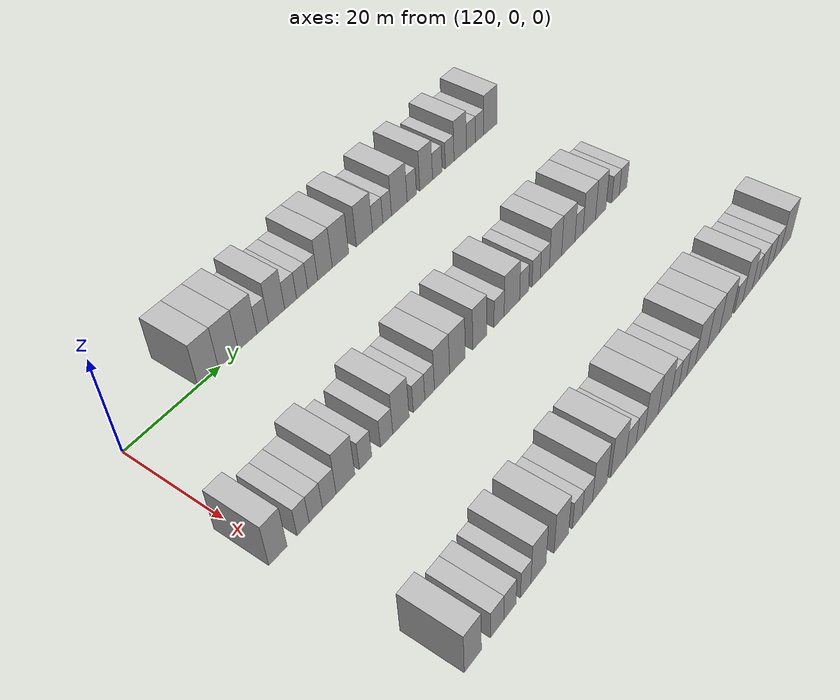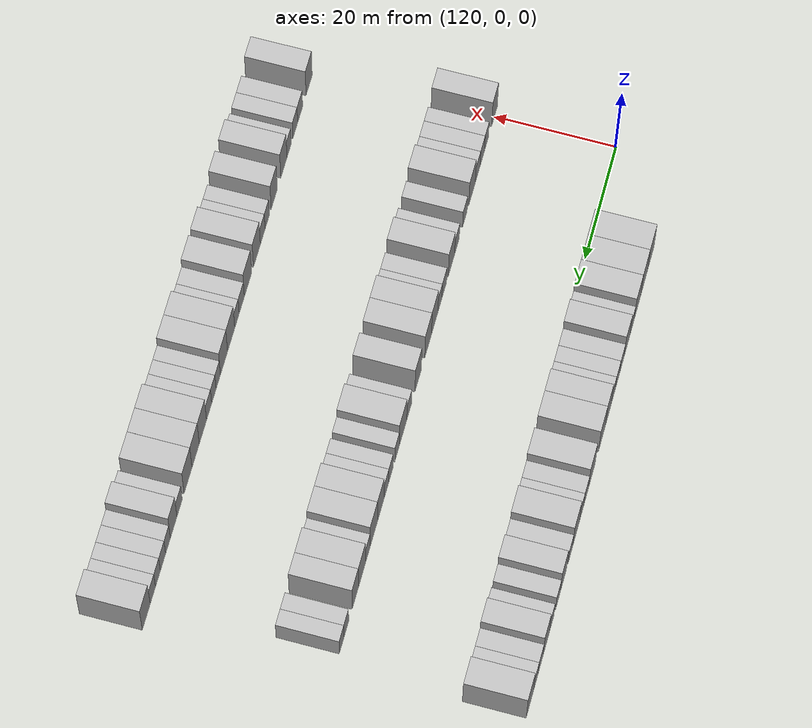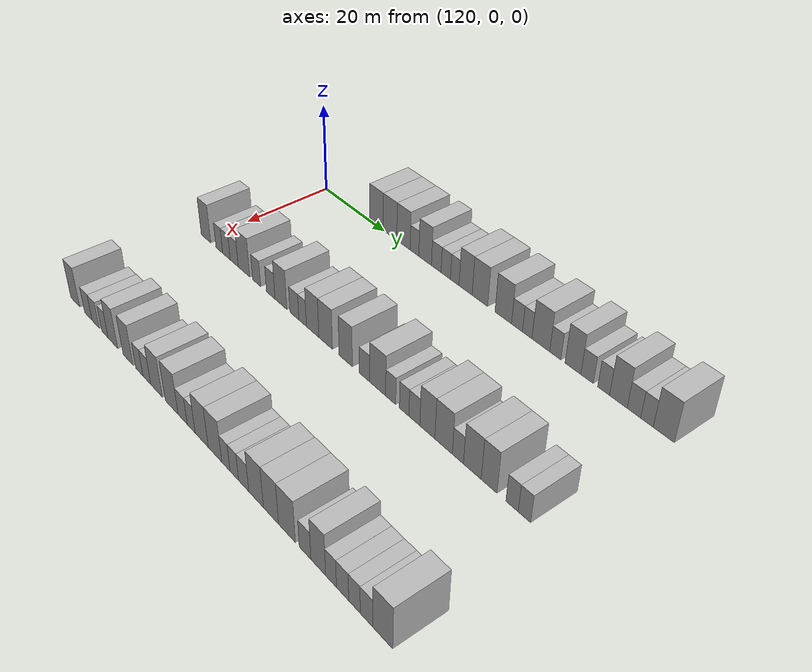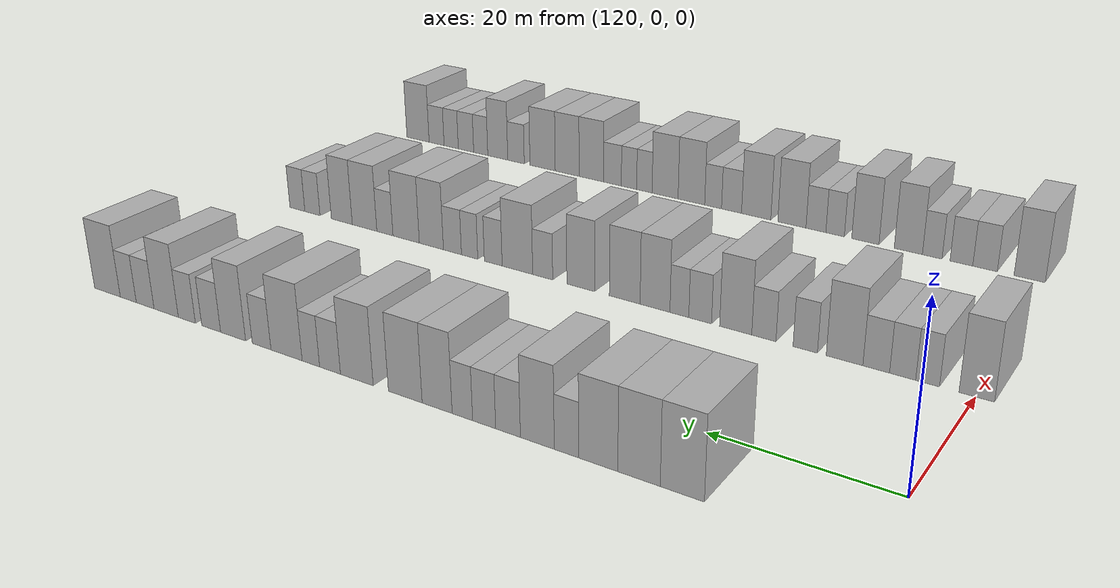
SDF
<sdf version="1.6">
 <world name="default">
  <model name="building_787">
   <static>1</static>
   <pose>115.0000 17.3237 0 0.000000 0.000000 0.000000</pose>
   <link name="link">
    <pose>0 0 4.50 0 0 0</pose>
    <collision name="collision"><geometry><box><size>10.0000 4.4347 9.0000</size></box></geometry></collision>
    <visual name="visual">
     <cast_shadows>0</cast_shadows>
     <geometry><box><size>10.0000 4.4347 9.0000</size></box></geometry>
     <material>
      <script>
       <uri>model://HANNAS_wall/materials/scripts</uri>
       <uri>model://HANNAS_wall/materials/textures</uri>
       <name>vrc/HANNAS_wall</name>
      </script>
     </material>
    </visual>
   </link>
  </model>
  <model name="building_788">
   <static>1</static>
   <pose>115.0000 21.7464 0 0.000000 0.000000 0.000000</pose>
   <link name="link">
    <pose>0 0 4.50 0 0 0</pose>
    <collision name="collision"><geometry><box><size>10.0000 4.4107 9.0000</size></box></geometry></collision>
    <visual name="visual">
     <cast_shadows>0</cast_shadows>
     <geometry><box><size>10.0000 4.4107 9.0000</size></box></geometry>
     <material>
      <script>
       <uri>model://HANNAS_wall/materials/scripts</uri>
       <uri>model://HANNAS_wall/materials/textures</uri>
       <name>vrc/HANNAS_wall</name>
      </script>
     </material>
    </visual>
   </link>
  </model>
  <model name="building_789">
   <static>1</static>
   <pose>115.0000 26.0598 0 0.000000 0.000000 0.000000</pose>
   <link name="link">
    <pose>0 0 4.50 0 0 0</pose>
    <collision name="collision"><geometry><box><size>10.0000 4.2161 9.0000</size></box></geometry></collision>
    <visual name="visual">
     <cast_shadows>0</cast_shadows>
     <geometry><box><size>10.0000 4.2161 9.0000</size></box></geometry>
     <material>
      <script>
       <uri>model://HANNAS_wall/materials/scripts</uri>
       <uri>model://HANNAS_wall/materials/textures</uri>
       <name>vrc/HANNAS_wall</name>
      </script>
     </material>
    </visual>
   </link>
  </model>
  <model name="building_790">
   <static>1</static>
   <pose>115.0000 29.5167 0 0.000000 0.000000 0.000000</pose>
   <link name="link">
    <pose>0 0 3.00 0 0 0</pose>
    <collision name="collision"><geometry><box><size>10.0000 2.6978 6.0000</size></box></geometry></collision>
    <visual name="visual">
     <cast_shadows>0</cast_shadows>
     <geometry><box><size>10.0000 2.6978 6.0000</size></box></geometry>
     <material>
      <script>
       <uri>model://HANNAS_wall/materials/scripts</uri>
       <uri>model://HANNAS_wall/materials/textures</uri>
       <name>vrc/HANNAS_wall</name>
      </script>
     </material>
    </visual>
   </link>
  </model>
  <model name="building_791">
   <static>1</static>
   <pose>115.0000 32.7900 0 0.000000 0.000000 0.000000</pose>
   <link name="link">
    <pose>0 0 4.50 0 0 0</pose>
    <collision name="collision"><geometry><box><size>10.0000 3.8489 9.0000</size></box></geometry></collision>
    <visual name="visual">
     <cast_shadows>0</cast_shadows>
     <geometry><box><size>10.0000 3.8489 9.0000</size></box></geometry>
     <material>
      <script>
       <uri>model://HANNAS_wall/materials/scripts</uri>
       <uri>model://HANNAS_wall/materials/textures</uri>
       <name>vrc/HANNAS_wall</name>
      </script>
     </material>
    </visual>
   </link>
  </model>
  <model name="building_792">
   <static>1</static>
   <pose>115.0000 36.1568 0 0.000000 0.000000 0.000000</pose>
   <link name="link">
    <pose>0 0 3.00 0 0 0</pose>
    <collision name="collision"><geometry><box><size>10.0000 2.8846 6.0000</size></box></geometry></collision>
    <visual name="visual">
     <cast_shadows>0</cast_shadows>
     <geometry><box><size>10.0000 2.8846 6.0000</size></box></geometry>
     <material>
      <script>
       <uri>model://HANNAS_wall/materials/scripts</uri>
       <uri>model://HANNAS_wall/materials/textures</uri>
       <name>vrc/HANNAS_wall</name>
      </script>
     </material>
    </visual>
   </link>
  </model>
  <model name="building_793">
   <static>1</static>
   <pose>115.0000 38.9729 0 0.000000 0.000000 0.000000</pose>
   <link name="link">
    <pose>0 0 3.00 0 0 0</pose>
    <collision name="collision"><geometry><box><size>10.0000 2.7478 6.0000</size></box></geometry></collision>
    <visual name="visual">
     <cast_shadows>0</cast_shadows>
     <geometry><box><size>10.0000 2.7478 6.0000</size></box></geometry>
     <material>
      <script>
       <uri>model://HANNAS_wall/materials/scripts</uri>
       <uri>model://HANNAS_wall/materials/textures</uri>
       <name>vrc/HANNAS_wall</name>
      </script>
     </material>
    </visual>
   </link>
  </model>
  <model name="building_794">
   <static>1</static>
   <pose>115.0000 41.5911 0 0.000000 0.000000 0.000000</pose>
   <link name="link">
    <pose>0 0 3.00 0 0 0</pose>
    <collision name="collision"><geometry><box><size>10.0000 2.4885 6.0000</size></box></geometry></collision>
    <visual name="visual">
     <cast_shadows>0</cast_shadows>
     <geometry><box><size>10.0000 2.4885 6.0000</size></box></geometry>
     <material>
      <script>
       <uri>model://HANNAS_wall/materials/scripts</uri>
       <uri>model://HANNAS_wall/materials/textures</uri>
       <name>vrc/HANNAS_wall</name>
      </script>
     </material>
    </visual>
   </link>
  </model>
  <model name="building_795">
   <static>1</static>
   <pose>115.0000 44.7033 0 0.000000 0.000000 0.000000</pose>
   <link name="link">
    <pose>0 0 4.50 0 0 0</pose>
    <collision name="collision"><geometry><box><size>10.0000 3.7360 9.0000</size></box></geometry></collision>
    <visual name="visual">
     <cast_shadows>0</cast_shadows>
     <geometry><box><size>10.0000 3.7360 9.0000</size></box></geometry>
     <material>
      <script>
       <uri>model://HANNAS_wall/materials/scripts</uri>
       <uri>model://HANNAS_wall/materials/textures</uri>
       <name>vrc/HANNAS_wall</name>
      </script>
     </material>
    </visual>
   </link>
  </model>
  <model name="building_796">
   <static>1</static>
   <pose>115.0000 48.7339 0 0.000000 0.000000 0.000000</pose>
   <link name="link">
    <pose>0 0 4.50 0 0 0</pose>
    <collision name="collision"><geometry><box><size>10.0000 4.3251 9.0000</size></box></geometry></collision>
    <visual name="visual">
     <cast_shadows>0</cast_shadows>
     <geometry><box><size>10.0000 4.3251 9.0000</size></box></geometry>
     <material>
      <script>
       <uri>model://HANNAS_wall/materials/scripts</uri>
       <uri>model://HANNAS_wall/materials/textures</uri>
       <name>vrc/HANNAS_wall</name>
      </script>
     </material>
    </visual>
   </link>
  </model>
  <model name="building_797">
   <static>1</static>
   <pose>115.0000 55.0959 0 0.000000 0.000000 0.000000</pose>
   <link name="link">
    <pose>0 0 4.50 0 0 0</pose>
    <collision name="collision"><geometry><box><size>10.0000 4.3990 9.0000</size></box></geometry></collision>
    <visual name="visual">
     <cast_shadows>0</cast_shadows>
     <geometry><box><size>10.0000 4.3990 9.0000</size></box></geometry>
     <material>
      <script>
       <uri>model://HANNAS_wall/materials/scripts</uri>
       <uri>model://HANNAS_wall/materials/textures</uri>
       <name>vrc/HANNAS_wall</name>
      </script>
     </material>
    </visual>
   </link>
  </model>
  <model name="building_798">
   <static>1</static>
   <pose>115.0000 58.7341 0 0.000000 0.000000 0.000000</pose>
   <link name="link">
    <pose>0 0 3.00 0 0 0</pose>
    <collision name="collision"><geometry><box><size>10.0000 2.8775 6.0000</size></box></geometry></collision>
    <visual name="visual">
     <cast_shadows>0</cast_shadows>
     <geometry><box><size>10.0000 2.8775 6.0000</size></box></geometry>
     <material>
      <script>
       <uri>model://HANNAS_wall/materials/scripts</uri>
       <uri>model://HANNAS_wall/materials/textures</uri>
       <name>vrc/HANNAS_wall</name>
      </script>
     </material>
    </visual>
   </link>
  </model>
  <model name="building_799">
   <static>1</static>
   <pose>115.0000 61.3990 0 0.000000 0.000000 0.000000</pose>
   <link name="link">
    <pose>0 0 3.00 0 0 0</pose>
    <collision name="collision"><geometry><box><size>10.0000 2.4522 6.0000</size></box></geometry></collision>
    <visual name="visual">
     <cast_shadows>0</cast_shadows>
     <geometry><box><size>10.0000 2.4522 6.0000</size></box></geometry>
     <material>
      <script>
       <uri>model://HANNAS_wall/materials/scripts</uri>
       <uri>model://HANNAS_wall/materials/textures</uri>
       <name>vrc/HANNAS_wall</name>
      </script>
     </material>
    </visual>
   </link>
  </model>
  <model name="building_800">
   <static>1</static>
   <pose>115.0000 64.8668 0 0.000000 0.000000 0.000000</pose>
   <link name="link">
    <pose>0 0 4.50 0 0 0</pose>
    <collision name="collision"><geometry><box><size>10.0000 4.4833 9.0000</size></box></geometry></collision>
    <visual name="visual">
     <cast_shadows>0</cast_shadows>
     <geometry><box><size>10.0000 4.4833 9.0000</size></box></geometry>
     <material>
      <script>
       <uri>model://HANNAS_wall/materials/scripts</uri>
       <uri>model://HANNAS_wall/materials/textures</uri>
       <name>vrc/HANNAS_wall</name>
      </script>
     </material>
    </visual>
   </link>
  </model>
  <model name="building_801">
   <static>1</static>
   <pose>115.0000 68.4862 0 0.000000 0.000000 0.000000</pose>
   <link name="link">
    <pose>0 0 3.00 0 0 0</pose>
    <collision name="collision"><geometry><box><size>10.0000 2.7556 6.0000</size></box></geometry></collision>
    <visual name="visual">
     <cast_shadows>0</cast_shadows>
     <geometry><box><size>10.0000 2.7556 6.0000</size></box></geometry>
     <material>
      <script>
       <uri>model://HANNAS_wall/materials/scripts</uri>
       <uri>model://HANNAS_wall/materials/textures</uri>
       <name>vrc/HANNAS_wall</name>
      </script>
     </material>
    </visual>
   </link>
  </model>
  <model name="building_802">
   <static>1</static>
   <pose>115.0000 72.7649 0 0.000000 0.000000 0.000000</pose>
   <link name="link">
    <pose>0 0 4.50 0 0 0</pose>
    <collision name="collision"><geometry><box><size>10.0000 3.8017 9.0000</size></box></geometry></collision>
    <visual name="visual">
     <cast_shadows>0</cast_shadows>
     <geometry><box><size>10.0000 3.8017 9.0000</size></box></geometry>
     <material>
      <script>
       <uri>model://HANNAS_wall/materials/scripts</uri>
       <uri>model://HANNAS_wall/materials/textures</uri>
       <name>vrc/HANNAS_wall</name>
      </script>
     </material>
    </visual>
   </link>
  </model>
  <model name="building_803">
   <static>1</static>
   <pose>115.0000 76.1323 0 0.000000 0.000000 0.000000</pose>
   <link name="link">
    <pose>0 0 3.00 0 0 0</pose>
    <collision name="collision"><geometry><box><size>10.0000 2.9332 6.0000</size></box></geometry></collision>
    <visual name="visual">
     <cast_shadows>0</cast_shadows>
     <geometry><box><size>10.0000 2.9332 6.0000</size></box></geometry>
     <material>
      <script>
       <uri>model://HANNAS_wall/materials/scripts</uri>
       <uri>model://HANNAS_wall/materials/textures</uri>
       <name>vrc/HANNAS_wall</name>
      </script>
     </material>
    </visual>
   </link>
  </model>
  <model name="building_804">
   <static>1</static>
   <pose>115.0000 79.9603 0 0.000000 0.000000 0.000000</pose>
   <link name="link">
    <pose>0 0 3.00 0 0 0</pose>
    <collision name="collision"><geometry><box><size>10.0000 2.7228 6.0000</size></box></geometry></collision>
    <visual name="visual">
     <cast_shadows>0</cast_shadows>
     <geometry><box><size>10.0000 2.7228 6.0000</size></box></geometry>
     <material>
      <script>
       <uri>model://HANNAS_wall/materials/scripts</uri>
       <uri>model://HANNAS_wall/materials/textures</uri>
       <name>vrc/HANNAS_wall</name>
      </script>
     </material>
    </visual>
   </link>
  </model>
  <model name="building_805">
   <static>1</static>
   <pose>115.0000 83.2973 0 0.000000 0.000000 0.000000</pose>
   <link name="link">
    <pose>0 0 4.50 0 0 0</pose>
    <collision name="collision"><geometry><box><size>10.0000 3.9514 9.0000</size></box></geometry></collision>
    <visual name="visual">
     <cast_shadows>0</cast_shadows>
     <geometry><box><size>10.0000 3.9514 9.0000</size></box></geometry>
     <material>
      <script>
       <uri>model://HANNAS_wall/materials/scripts</uri>
       <uri>model://HANNAS_wall/materials/textures</uri>
       <name>vrc/HANNAS_wall</name>
      </script>
     </material>
    </visual>
   </link>
  </model>
  <model name="building_806">
   <static>1</static>
   <pose>115.0000 86.7547 0 0.000000 0.000000 0.000000</pose>
   <link name="link">
    <pose>0 0 3.00 0 0 0</pose>
    <collision name="collision"><geometry><box><size>10.0000 2.9634 6.0000</size></box></geometry></collision>
    <visual name="visual">
     <cast_shadows>0</cast_shadows>
     <geometry><box><size>10.0000 2.9634 6.0000</size></box></geometry>
     <material>
      <script>
       <uri>model://HANNAS_wall/materials/scripts</uri>
       <uri>model://HANNAS_wall/materials/textures</uri>
       <name>vrc/HANNAS_wall</name>
      </script>
     </material>
    </visual>
   </link>
  </model>
  <model name="building_807">
   <static>1</static>
   <pose>115.0000 89.5929 0 0.000000 0.000000 0.000000</pose>
   <link name="link">
    <pose>0 0 3.00 0 0 0</pose>
    <collision name="collision"><geometry><box><size>10.0000 2.7131 6.0000</size></box></geometry></collision>
    <visual name="visual">
     <cast_shadows>0</cast_shadows>
     <geometry><box><size>10.0000 2.7131 6.0000</size></box></geometry>
     <material>
      <script>
       <uri>model://HANNAS_wall/materials/scripts</uri>
       <uri>model://HANNAS_wall/materials/textures</uri>
       <name>vrc/HANNAS_wall</name>
      </script>
     </material>
    </visual>
   </link>
  </model>
  <model name="building_808">
   <static>1</static>
   <pose>115.0000 93.1751 0 0.000000 0.000000 0.000000</pose>
   <link name="link">
    <pose>0 0 4.50 0 0 0</pose>
    <collision name="collision"><geometry><box><size>10.0000 4.4512 9.0000</size></box></geometry></collision>
    <visual name="visual">
     <cast_shadows>0</cast_shadows>
     <geometry><box><size>10.0000 4.4512 9.0000</size></box></geometry>
     <material>
      <script>
       <uri>model://HANNAS_wall/materials/scripts</uri>
       <uri>model://HANNAS_wall/materials/textures</uri>
       <name>vrc/HANNAS_wall</name>
      </script>
     </material>
    </visual>
   </link>
  </model>
  <model name="building_1011">
   <static>1</static>
   <pose>145.0000 -0.0899 0 0.000000 0.000000 0.000000</pose>
   <link name="link">
    <pose>0 0 4.50 0 0 0</pose>
    <collision name="collision"><geometry><box><size>10.0000 3.6062 9.0000</size></box></geometry></collision>
    <visual name="visual">
     <cast_shadows>0</cast_shadows>
     <geometry><box><size>10.0000 3.6062 9.0000</size></box></geometry>
     <material>
      <script>
       <uri>model://HANNAS_wall/materials/scripts</uri>
       <uri>model://HANNAS_wall/materials/textures</uri>
       <name>vrc/HANNAS_wall</name>
      </script>
     </material>
    </visual>
   </link>
  </model>
  <model name="building_1012">
   <static>1</static>
   <pose>145.0000 4.9641 0 0.000000 0.000000 0.000000</pose>
   <link name="link">
    <pose>0 0 3.00 0 0 0</pose>
    <collision name="collision"><geometry><box><size>10.0000 2.5018 6.0000</size></box></geometry></collision>
    <visual name="visual">
     <cast_shadows>0</cast_shadows>
     <geometry><box><size>10.0000 2.5018 6.0000</size></box></geometry>
     <material>
      <script>
       <uri>model://HANNAS_wall/materials/scripts</uri>
       <uri>model://HANNAS_wall/materials/textures</uri>
       <name>vrc/HANNAS_wall</name>
      </script>
     </material>
    </visual>
   </link>
  </model>
  <model name="building_1013">
   <static>1</static>
   <pose>145.0000 7.6079 0 0.000000 0.000000 0.000000</pose>
   <link name="link">
    <pose>0 0 3.00 0 0 0</pose>
    <collision name="collision"><geometry><box><size>10.0000 2.7857 6.0000</size></box></geometry></collision>
    <visual name="visual">
     <cast_shadows>0</cast_shadows>
     <geometry><box><size>10.0000 2.7857 6.0000</size></box></geometry>
     <material>
      <script>
       <uri>model://HANNAS_wall/materials/scripts</uri>
       <uri>model://HANNAS_wall/materials/textures</uri>
       <name>vrc/HANNAS_wall</name>
      </script>
     </material>
    </visual>
   </link>
  </model>
  <model name="building_1014">
   <static>1</static>
   <pose>145.0000 10.4565 0 0.000000 0.000000 0.000000</pose>
   <link name="link">
    <pose>0 0 3.00 0 0 0</pose>
    <collision name="collision"><geometry><box><size>10.0000 2.9116 6.0000</size></box></geometry></collision>
    <visual name="visual">
     <cast_shadows>0</cast_shadows>
     <geometry><box><size>10.0000 2.9116 6.0000</size></box></geometry>
     <material>
      <script>
       <uri>model://HANNAS_wall/materials/scripts</uri>
       <uri>model://HANNAS_wall/materials/textures</uri>
       <name>vrc/HANNAS_wall</name>
      </script>
     </material>
    </visual>
   </link>
  </model>
  <model name="building_1015">
   <static>1</static>
   <pose>145.0000 13.9588 0 0.000000 0.000000 0.000000</pose>
   <link name="link">
    <pose>0 0 4.50 0 0 0</pose>
    <collision name="collision"><geometry><box><size>10.0000 4.0930 9.0000</size></box></geometry></collision>
    <visual name="visual">
     <cast_shadows>0</cast_shadows>
     <geometry><box><size>10.0000 4.0930 9.0000</size></box></geometry>
     <material>
      <script>
       <uri>model://HANNAS_wall/materials/scripts</uri>
       <uri>model://HANNAS_wall/materials/textures</uri>
       <name>vrc/HANNAS_wall</name>
      </script>
     </material>
    </visual>
   </link>
  </model>
  <model name="building_1016">
   <static>1</static>
   <pose>145.0000 18.4103 0 0.000000 0.000000 0.000000</pose>
   <link name="link">
    <pose>0 0 3.00 0 0 0</pose>
    <collision name="collision"><geometry><box><size>10.0000 2.8099 6.0000</size></box></geometry></collision>
    <visual name="visual">
     <cast_shadows>0</cast_shadows>
     <geometry><box><size>10.0000 2.8099 6.0000</size></box></geometry>
     <material>
      <script>
       <uri>model://HANNAS_wall/materials/scripts</uri>
       <uri>model://HANNAS_wall/materials/textures</uri>
       <name>vrc/HANNAS_wall</name>
      </script>
     </material>
    </visual>
   </link>
  </model>
  <model name="building_1017">
   <static>1</static>
   <pose>145.0000 23.2576 0 0.000000 0.000000 0.000000</pose>
   <link name="link">
    <pose>0 0 3.00 0 0 0</pose>
    <collision name="collision"><geometry><box><size>10.0000 2.8848 6.0000</size></box></geometry></collision>
    <visual name="visual">
     <cast_shadows>0</cast_shadows>
     <geometry><box><size>10.0000 2.8848 6.0000</size></box></geometry>
     <material>
      <script>
       <uri>model://HANNAS_wall/materials/scripts</uri>
       <uri>model://HANNAS_wall/materials/textures</uri>
       <name>vrc/HANNAS_wall</name>
      </script>
     </material>
    </visual>
   </link>
  </model>
  <model name="building_1018">
   <static>1</static>
   <pose>145.0000 26.6573 0 0.000000 0.000000 0.000000</pose>
   <link name="link">
    <pose>0 0 4.50 0 0 0</pose>
    <collision name="collision"><geometry><box><size>10.0000 3.9147 9.0000</size></box></geometry></collision>
    <visual name="visual">
     <cast_shadows>0</cast_shadows>
     <geometry><box><size>10.0000 3.9147 9.0000</size></box></geometry>
     <material>
      <script>
       <uri>model://HANNAS_wall/materials/scripts</uri>
       <uri>model://HANNAS_wall/materials/textures</uri>
       <name>vrc/HANNAS_wall</name>
      </script>
     </material>
    </visual>
   </link>
  </model>
  <model name="building_1019">
   <static>1</static>
   <pose>145.0000 31.0415 0 0.000000 0.000000 0.000000</pose>
   <link name="link">
    <pose>0 0 3.00 0 0 0</pose>
    <collision name="collision"><geometry><box><size>10.0000 2.8536 6.0000</size></box></geometry></collision>
    <visual name="visual">
     <cast_shadows>0</cast_shadows>
     <geometry><box><size>10.0000 2.8536 6.0000</size></box></geometry>
     <material>
      <script>
       <uri>model://HANNAS_wall/materials/scripts</uri>
       <uri>model://HANNAS_wall/materials/textures</uri>
       <name>vrc/HANNAS_wall</name>
      </script>
     </material>
    </visual>
   </link>
  </model>
  <model name="building_1020">
   <static>1</static>
   <pose>145.0000 33.6708 0 0.000000 0.000000 0.000000</pose>
   <link name="link">
    <pose>0 0 3.00 0 0 0</pose>
    <collision name="collision"><geometry><box><size>10.0000 2.4051 6.0000</size></box></geometry></collision>
    <visual name="visual">
     <cast_shadows>0</cast_shadows>
     <geometry><box><size>10.0000 2.4051 6.0000</size></box></geometry>
     <material>
      <script>
       <uri>model://HANNAS_wall/materials/scripts</uri>
       <uri>model://HANNAS_wall/materials/textures</uri>
       <name>vrc/HANNAS_wall</name>
      </script>
     </material>
    </visual>
   </link>
  </model>
  <model name="building_1021">
   <static>1</static>
   <pose>145.0000 36.8156 0 0.000000 0.000000 0.000000</pose>
   <link name="link">
    <pose>0 0 4.50 0 0 0</pose>
    <collision name="collision"><geometry><box><size>10.0000 3.8844 9.0000</size></box></geometry></collision>
    <visual name="visual">
     <cast_shadows>0</cast_shadows>
     <geometry><box><size>10.0000 3.8844 9.0000</size></box></geometry>
     <material>
      <script>
       <uri>model://HANNAS_wall/materials/scripts</uri>
       <uri>model://HANNAS_wall/materials/textures</uri>
       <name>vrc/HANNAS_wall</name>
      </script>
     </material>
    </visual>
   </link>
  </model>
  <model name="building_1022">
   <static>1</static>
   <pose>145.0000 40.8152 0 0.000000 0.000000 0.000000</pose>
   <link name="link">
    <pose>0 0 4.50 0 0 0</pose>
    <collision name="collision"><geometry><box><size>10.0000 4.1149 9.0000</size></box></geometry></collision>
    <visual name="visual">
     <cast_shadows>0</cast_shadows>
     <geometry><box><size>10.0000 4.1149 9.0000</size></box></geometry>
     <material>
      <script>
       <uri>model://HANNAS_wall/materials/scripts</uri>
       <uri>model://HANNAS_wall/materials/textures</uri>
       <name>vrc/HANNAS_wall</name>
      </script>
     </material>
    </visual>
   </link>
  </model>
  <model name="building_1023">
   <static>1</static>
   <pose>145.0000 46.8036 0 0.000000 0.000000 0.000000</pose>
   <link name="link">
    <pose>0 0 4.50 0 0 0</pose>
    <collision name="collision"><geometry><box><size>10.0000 3.8618 9.0000</size></box></geometry></collision>
    <visual name="visual">
     <cast_shadows>0</cast_shadows>
     <geometry><box><size>10.0000 3.8618 9.0000</size></box></geometry>
     <material>
      <script>
       <uri>model://HANNAS_wall/materials/scripts</uri>
       <uri>model://HANNAS_wall/materials/textures</uri>
       <name>vrc/HANNAS_wall</name>
      </script>
     </material>
    </visual>
   </link>
  </model>
  <model name="building_1024">
   <static>1</static>
   <pose>145.0000 52.1719 0 0.000000 0.000000 0.000000</pose>
   <link name="link">
    <pose>0 0 3.00 0 0 0</pose>
    <collision name="collision"><geometry><box><size>10.0000 2.8747 6.0000</size></box></geometry></collision>
    <visual name="visual">
     <cast_shadows>0</cast_shadows>
     <geometry><box><size>10.0000 2.8747 6.0000</size></box></geometry>
     <material>
      <script>
       <uri>model://HANNAS_wall/materials/scripts</uri>
       <uri>model://HANNAS_wall/materials/textures</uri>
       <name>vrc/HANNAS_wall</name>
      </script>
     </material>
    </visual>
   </link>
  </model>
  <model name="building_1025">
   <static>1</static>
   <pose>145.0000 55.8503 0 0.000000 0.000000 0.000000</pose>
   <link name="link">
    <pose>0 0 4.50 0 0 0</pose>
    <collision name="collision"><geometry><box><size>10.0000 4.4821 9.0000</size></box></geometry></collision>
    <visual name="visual">
     <cast_shadows>0</cast_shadows>
     <geometry><box><size>10.0000 4.4821 9.0000</size></box></geometry>
     <material>
      <script>
       <uri>model://HANNAS_wall/materials/scripts</uri>
       <uri>model://HANNAS_wall/materials/textures</uri>
       <name>vrc/HANNAS_wall</name>
      </script>
     </material>
    </visual>
   </link>
  </model>
  <model name="building_1026">
   <static>1</static>
   <pose>145.0000 59.4275 0 0.000000 0.000000 0.000000</pose>
   <link name="link">
    <pose>0 0 3.00 0 0 0</pose>
    <collision name="collision"><geometry><box><size>10.0000 2.6723 6.0000</size></box></geometry></collision>
    <visual name="visual">
     <cast_shadows>0</cast_shadows>
     <geometry><box><size>10.0000 2.6723 6.0000</size></box></geometry>
     <material>
      <script>
       <uri>model://HANNAS_wall/materials/scripts</uri>
       <uri>model://HANNAS_wall/materials/textures</uri>
       <name>vrc/HANNAS_wall</name>
      </script>
     </material>
    </visual>
   </link>
  </model>
  <model name="building_1027">
   <static>1</static>
   <pose>145.0000 63.0140 0 0.000000 0.000000 0.000000</pose>
   <link name="link">
    <pose>0 0 3.00 0 0 0</pose>
    <collision name="collision"><geometry><box><size>10.0000 2.5007 6.0000</size></box></geometry></collision>
    <visual name="visual">
     <cast_shadows>0</cast_shadows>
     <geometry><box><size>10.0000 2.5007 6.0000</size></box></geometry>
     <material>
      <script>
       <uri>model://HANNAS_wall/materials/scripts</uri>
       <uri>model://HANNAS_wall/materials/textures</uri>
       <name>vrc/HANNAS_wall</name>
      </script>
     </material>
    </visual>
   </link>
  </model>
  <model name="building_1028">
   <static>1</static>
   <pose>145.0000 65.6705 0 0.000000 0.000000 0.000000</pose>
   <link name="link">
    <pose>0 0 3.00 0 0 0</pose>
    <collision name="collision"><geometry><box><size>10.0000 2.8124 6.0000</size></box></geometry></collision>
    <visual name="visual">
     <cast_shadows>0</cast_shadows>
     <geometry><box><size>10.0000 2.8124 6.0000</size></box></geometry>
     <material>
      <script>
       <uri>model://HANNAS_wall/materials/scripts</uri>
       <uri>model://HANNAS_wall/materials/textures</uri>
       <name>vrc/HANNAS_wall</name>
      </script>
     </material>
    </visual>
   </link>
  </model>
  <model name="building_1029">
   <static>1</static>
   <pose>145.0000 68.9906 0 0.000000 0.000000 0.000000</pose>
   <link name="link">
    <pose>0 0 4.50 0 0 0</pose>
    <collision name="collision"><geometry><box><size>10.0000 3.8277 9.0000</size></box></geometry></collision>
    <visual name="visual">
     <cast_shadows>0</cast_shadows>
     <geometry><box><size>10.0000 3.8277 9.0000</size></box></geometry>
     <material>
      <script>
       <uri>model://HANNAS_wall/materials/scripts</uri>
       <uri>model://HANNAS_wall/materials/textures</uri>
       <name>vrc/HANNAS_wall</name>
      </script>
     </material>
    </visual>
   </link>
  </model>
  <model name="building_1030">
   <static>1</static>
   <pose>145.0000 73.0490 0 0.000000 0.000000 0.000000</pose>
   <link name="link">
    <pose>0 0 4.50 0 0 0</pose>
    <collision name="collision"><geometry><box><size>10.0000 4.2890 9.0000</size></box></geometry></collision>
    <visual name="visual">
     <cast_shadows>0</cast_shadows>
     <geometry><box><size>10.0000 4.2890 9.0000</size></box></geometry>
     <material>
      <script>
       <uri>model://HANNAS_wall/materials/scripts</uri>
       <uri>model://HANNAS_wall/materials/textures</uri>
       <name>vrc/HANNAS_wall</name>
      </script>
     </material>
    </visual>
   </link>
  </model>
  <model name="building_1031">
   <static>1</static>
   <pose>145.0000 76.5304 0 0.000000 0.000000 0.000000</pose>
   <link name="link">
    <pose>0 0 3.00 0 0 0</pose>
    <collision name="collision"><geometry><box><size>10.0000 2.6739 6.0000</size></box></geometry></collision>
    <visual name="visual">
     <cast_shadows>0</cast_shadows>
     <geometry><box><size>10.0000 2.6739 6.0000</size></box></geometry>
     <material>
      <script>
       <uri>model://HANNAS_wall/materials/scripts</uri>
       <uri>model://HANNAS_wall/materials/textures</uri>
       <name>vrc/HANNAS_wall</name>
      </script>
     </material>
    </visual>
   </link>
  </model>
  <model name="building_1032">
   <static>1</static>
   <pose>145.0000 79.9479 0 0.000000 0.000000 0.000000</pose>
   <link name="link">
    <pose>0 0 4.50 0 0 0</pose>
    <collision name="collision"><geometry><box><size>10.0000 4.1612 9.0000</size></box></geometry></collision>
    <visual name="visual">
     <cast_shadows>0</cast_shadows>
     <geometry><box><size>10.0000 4.1612 9.0000</size></box></geometry>
     <material>
      <script>
       <uri>model://HANNAS_wall/materials/scripts</uri>
       <uri>model://HANNAS_wall/materials/textures</uri>
       <name>vrc/HANNAS_wall</name>
      </script>
     </material>
    </visual>
   </link>
  </model>
  <model name="building_1033">
   <static>1</static>
   <pose>145.0000 83.8376 0 0.000000 0.000000 0.000000</pose>
   <link name="link">
    <pose>0 0 4.50 0 0 0</pose>
    <collision name="collision"><geometry><box><size>10.0000 3.6182 9.0000</size></box></geometry></collision>
    <visual name="visual">
     <cast_shadows>0</cast_shadows>
     <geometry><box><size>10.0000 3.6182 9.0000</size></box></geometry>
     <material>
      <script>
       <uri>model://HANNAS_wall/materials/scripts</uri>
       <uri>model://HANNAS_wall/materials/textures</uri>
       <name>vrc/HANNAS_wall</name>
      </script>
     </material>
    </visual>
   </link>
  </model>
  <model name="building_1034">
   <static>1</static>
   <pose>145.0000 88.9936 0 0.000000 0.000000 0.000000</pose>
   <link name="link">
    <pose>0 0 3.00 0 0 0</pose>
    <collision name="collision"><geometry><box><size>10.0000 2.6939 6.0000</size></box></geometry></collision>
    <visual name="visual">
     <cast_shadows>0</cast_shadows>
     <geometry><box><size>10.0000 2.6939 6.0000</size></box></geometry>
     <material>
      <script>
       <uri>model://HANNAS_wall/materials/scripts</uri>
       <uri>model://HANNAS_wall/materials/textures</uri>
       <name>vrc/HANNAS_wall</name>
      </script>
     </material>
    </visual>
   </link>
  </model>
  <model name="building_1035">
   <static>1</static>
   <pose>145.0000 91.6849 0 0.000000 0.000000 0.000000</pose>
   <link name="link">
    <pose>0 0 3.00 0 0 0</pose>
    <collision name="collision"><geometry><box><size>10.0000 2.6885 6.0000</size></box></geometry></collision>
    <visual name="visual">
     <cast_shadows>0</cast_shadows>
     <geometry><box><size>10.0000 2.6885 6.0000</size></box></geometry>
     <material>
      <script>
       <uri>model://HANNAS_wall/materials/scripts</uri>
       <uri>model://HANNAS_wall/materials/textures</uri>
       <name>vrc/HANNAS_wall</name>
      </script>
     </material>
    </visual>
   </link>
  </model>
  <model name="building_1221">
   <static>1</static>
   <pose>175.0000 2.4556 0 0.000000 0.000000 0.000000</pose>
   <link name="link">
    <pose>0 0 4.50 0 0 0</pose>
    <collision name="collision"><geometry><box><size>10.0000 3.6795 9.0000</size></box></geometry></collision>
    <visual name="visual">
     <cast_shadows>0</cast_shadows>
     <geometry><box><size>10.0000 3.6795 9.0000</size></box></geometry>
     <material>
      <script>
       <uri>model://HANNAS_wall/materials/scripts</uri>
       <uri>model://HANNAS_wall/materials/textures</uri>
       <name>vrc/HANNAS_wall</name>
      </script>
     </material>
    </visual>
   </link>
  </model>
  <model name="building_1222">
   <static>1</static>
   <pose>175.0000 7.7888 0 0.000000 0.000000 0.000000</pose>
   <link name="link">
    <pose>0 0 3.00 0 0 0</pose>
    <collision name="collision"><geometry><box><size>10.0000 2.9871 6.0000</size></box></geometry></collision>
    <visual name="visual">
     <cast_shadows>0</cast_shadows>
     <geometry><box><size>10.0000 2.9871 6.0000</size></box></geometry>
     <material>
      <script>
       <uri>model://HANNAS_wall/materials/scripts</uri>
       <uri>model://HANNAS_wall/materials/textures</uri>
       <name>vrc/HANNAS_wall</name>
      </script>
     </material>
    </visual>
   </link>
  </model>
  <model name="building_1223">
   <static>1</static>
   <pose>175.0000 10.6929 0 0.000000 0.000000 0.000000</pose>
   <link name="link">
    <pose>0 0 3.00 0 0 0</pose>
    <collision name="collision"><geometry><box><size>10.0000 2.8210 6.0000</size></box></geometry></collision>
    <visual name="visual">
     <cast_shadows>0</cast_shadows>
     <geometry><box><size>10.0000 2.8210 6.0000</size></box></geometry>
     <material>
      <script>
       <uri>model://HANNAS_wall/materials/scripts</uri>
       <uri>model://HANNAS_wall/materials/textures</uri>
       <name>vrc/HANNAS_wall</name>
      </script>
     </material>
    </visual>
   </link>
  </model>
  <model name="building_1224">
   <static>1</static>
   <pose>175.0000 14.3432 0 0.000000 0.000000 0.000000</pose>
   <link name="link">
    <pose>0 0 3.00 0 0 0</pose>
    <collision name="collision"><geometry><box><size>10.0000 2.4797 6.0000</size></box></geometry></collision>
    <visual name="visual">
     <cast_shadows>0</cast_shadows>
     <geometry><box><size>10.0000 2.4797 6.0000</size></box></geometry>
     <material>
      <script>
       <uri>model://HANNAS_wall/materials/scripts</uri>
       <uri>model://HANNAS_wall/materials/textures</uri>
       <name>vrc/HANNAS_wall</name>
      </script>
     </material>
    </visual>
   </link>
  </model>
  <model name="building_1225">
   <static>1</static>
   <pose>175.0000 17.4017 0 0.000000 0.000000 0.000000</pose>
   <link name="link">
    <pose>0 0 4.50 0 0 0</pose>
    <collision name="collision"><geometry><box><size>10.0000 3.6372 9.0000</size></box></geometry></collision>
    <visual name="visual">
     <cast_shadows>0</cast_shadows>
     <geometry><box><size>10.0000 3.6372 9.0000</size></box></geometry>
     <material>
      <script>
       <uri>model://HANNAS_wall/materials/scripts</uri>
       <uri>model://HANNAS_wall/materials/textures</uri>
       <name>vrc/HANNAS_wall</name>
      </script>
     </material>
    </visual>
   </link>
  </model>
  <model name="building_1226">
   <static>1</static>
   <pose>175.0000 23.0343 0 0.000000 0.000000 0.000000</pose>
   <link name="link">
    <pose>0 0 4.50 0 0 0</pose>
    <collision name="collision"><geometry><box><size>10.0000 3.6280 9.0000</size></box></geometry></collision>
    <visual name="visual">
     <cast_shadows>0</cast_shadows>
     <geometry><box><size>10.0000 3.6280 9.0000</size></box></geometry>
     <material>
      <script>
       <uri>model://HANNAS_wall/materials/scripts</uri>
       <uri>model://HANNAS_wall/materials/textures</uri>
       <name>vrc/HANNAS_wall</name>
      </script>
     </material>
    </visual>
   </link>
  </model>
  <model name="building_1227">
   <static>1</static>
   <pose>175.0000 27.1100 0 0.000000 0.000000 0.000000</pose>
   <link name="link">
    <pose>0 0 3.00 0 0 0</pose>
    <collision name="collision"><geometry><box><size>10.0000 2.5234 6.0000</size></box></geometry></collision>
    <visual name="visual">
     <cast_shadows>0</cast_shadows>
     <geometry><box><size>10.0000 2.5234 6.0000</size></box></geometry>
     <material>
      <script>
       <uri>model://HANNAS_wall/materials/scripts</uri>
       <uri>model://HANNAS_wall/materials/textures</uri>
       <name>vrc/HANNAS_wall</name>
      </script>
     </material>
    </visual>
   </link>
  </model>
  <model name="building_1228">
   <static>1</static>
   <pose>175.0000 29.7456 0 0.000000 0.000000 0.000000</pose>
   <link name="link">
    <pose>0 0 3.00 0 0 0</pose>
    <collision name="collision"><geometry><box><size>10.0000 2.7478 6.0000</size></box></geometry></collision>
    <visual name="visual">
     <cast_shadows>0</cast_shadows>
     <geometry><box><size>10.0000 2.7478 6.0000</size></box></geometry>
     <material>
      <script>
       <uri>model://HANNAS_wall/materials/scripts</uri>
       <uri>model://HANNAS_wall/materials/textures</uri>
       <name>vrc/HANNAS_wall</name>
      </script>
     </material>
    </visual>
   </link>
  </model>
  <model name="building_1229">
   <static>1</static>
   <pose>175.0000 33.1090 0 0.000000 0.000000 0.000000</pose>
   <link name="link">
    <pose>0 0 4.50 0 0 0</pose>
    <collision name="collision"><geometry><box><size>10.0000 3.9789 9.0000</size></box></geometry></collision>
    <visual name="visual">
     <cast_shadows>0</cast_shadows>
     <geometry><box><size>10.0000 3.9789 9.0000</size></box></geometry>
     <material>
      <script>
       <uri>model://HANNAS_wall/materials/scripts</uri>
       <uri>model://HANNAS_wall/materials/textures</uri>
       <name>vrc/HANNAS_wall</name>
      </script>
     </material>
    </visual>
   </link>
  </model>
  <model name="building_1230">
   <static>1</static>
   <pose>175.0000 38.2271 0 0.000000 0.000000 0.000000</pose>
   <link name="link">
    <pose>0 0 4.50 0 0 0</pose>
    <collision name="collision"><geometry><box><size>10.0000 4.2574 9.0000</size></box></geometry></collision>
    <visual name="visual">
     <cast_shadows>0</cast_shadows>
     <geometry><box><size>10.0000 4.2574 9.0000</size></box></geometry>
     <material>
      <script>
       <uri>model://HANNAS_wall/materials/scripts</uri>
       <uri>model://HANNAS_wall/materials/textures</uri>
       <name>vrc/HANNAS_wall</name>
      </script>
     </material>
    </visual>
   </link>
  </model>
  <model name="building_1231">
   <static>1</static>
   <pose>175.0000 41.8380 0 0.000000 0.000000 0.000000</pose>
   <link name="link">
    <pose>0 0 3.00 0 0 0</pose>
    <collision name="collision"><geometry><box><size>10.0000 2.9643 6.0000</size></box></geometry></collision>
    <visual name="visual">
     <cast_shadows>0</cast_shadows>
     <geometry><box><size>10.0000 2.9643 6.0000</size></box></geometry>
     <material>
      <script>
       <uri>model://HANNAS_wall/materials/scripts</uri>
       <uri>model://HANNAS_wall/materials/textures</uri>
       <name>vrc/HANNAS_wall</name>
      </script>
     </material>
    </visual>
   </link>
  </model>
  <model name="building_1232">
   <static>1</static>
   <pose>175.0000 44.5868 0 0.000000 0.000000 0.000000</pose>
   <link name="link">
    <pose>0 0 3.00 0 0 0</pose>
    <collision name="collision"><geometry><box><size>10.0000 2.5333 6.0000</size></box></geometry></collision>
    <visual name="visual">
     <cast_shadows>0</cast_shadows>
     <geometry><box><size>10.0000 2.5333 6.0000</size></box></geometry>
     <material>
      <script>
       <uri>model://HANNAS_wall/materials/scripts</uri>
       <uri>model://HANNAS_wall/materials/textures</uri>
       <name>vrc/HANNAS_wall</name>
      </script>
     </material>
    </visual>
   </link>
  </model>
  <model name="building_1233">
   <static>1</static>
   <pose>175.0000 47.8920 0 0.000000 0.000000 0.000000</pose>
   <link name="link">
    <pose>0 0 4.50 0 0 0</pose>
    <collision name="collision"><geometry><box><size>10.0000 4.0771 9.0000</size></box></geometry></collision>
    <visual name="visual">
     <cast_shadows>0</cast_shadows>
     <geometry><box><size>10.0000 4.0771 9.0000</size></box></geometry>
     <material>
      <script>
       <uri>model://HANNAS_wall/materials/scripts</uri>
       <uri>model://HANNAS_wall/materials/textures</uri>
       <name>vrc/HANNAS_wall</name>
      </script>
     </material>
    </visual>
   </link>
  </model>
  <model name="building_1234">
   <static>1</static>
   <pose>175.0000 51.9634 0 0.000000 0.000000 0.000000</pose>
   <link name="link">
    <pose>0 0 4.50 0 0 0</pose>
    <collision name="collision"><geometry><box><size>10.0000 4.0658 9.0000</size></box></geometry></collision>
    <visual name="visual">
     <cast_shadows>0</cast_shadows>
     <geometry><box><size>10.0000 4.0658 9.0000</size></box></geometry>
     <material>
      <script>
       <uri>model://HANNAS_wall/materials/scripts</uri>
       <uri>model://HANNAS_wall/materials/textures</uri>
       <name>vrc/HANNAS_wall</name>
      </script>
     </material>
    </visual>
   </link>
  </model>
  <model name="building_1235">
   <static>1</static>
   <pose>175.0000 55.2245 0 0.000000 0.000000 0.000000</pose>
   <link name="link">
    <pose>0 0 3.00 0 0 0</pose>
    <collision name="collision"><geometry><box><size>10.0000 2.4564 6.0000</size></box></geometry></collision>
    <visual name="visual">
     <cast_shadows>0</cast_shadows>
     <geometry><box><size>10.0000 2.4564 6.0000</size></box></geometry>
     <material>
      <script>
       <uri>model://HANNAS_wall/materials/scripts</uri>
       <uri>model://HANNAS_wall/materials/textures</uri>
       <name>vrc/HANNAS_wall</name>
      </script>
     </material>
    </visual>
   </link>
  </model>
  <model name="building_1236">
   <static>1</static>
   <pose>175.0000 57.6933 0 0.000000 0.000000 0.000000</pose>
   <link name="link">
    <pose>0 0 3.00 0 0 0</pose>
    <collision name="collision"><geometry><box><size>10.0000 2.4811 6.0000</size></box></geometry></collision>
    <visual name="visual">
     <cast_shadows>0</cast_shadows>
     <geometry><box><size>10.0000 2.4811 6.0000</size></box></geometry>
     <material>
      <script>
       <uri>model://HANNAS_wall/materials/scripts</uri>
       <uri>model://HANNAS_wall/materials/textures</uri>
       <name>vrc/HANNAS_wall</name>
      </script>
     </material>
    </visual>
   </link>
  </model>
  <model name="building_1237">
   <static>1</static>
   <pose>175.0000 60.3858 0 0.000000 0.000000 0.000000</pose>
   <link name="link">
    <pose>0 0 3.00 0 0 0</pose>
    <collision name="collision"><geometry><box><size>10.0000 2.9040 6.0000</size></box></geometry></collision>
    <visual name="visual">
     <cast_shadows>0</cast_shadows>
     <geometry><box><size>10.0000 2.9040 6.0000</size></box></geometry>
     <material>
      <script>
       <uri>model://HANNAS_wall/materials/scripts</uri>
       <uri>model://HANNAS_wall/materials/textures</uri>
       <name>vrc/HANNAS_wall</name>
      </script>
     </material>
    </visual>
   </link>
  </model>
  <model name="building_1238">
   <static>1</static>
   <pose>175.0000 63.8786 0 0.000000 0.000000 0.000000</pose>
   <link name="link">
    <pose>0 0 4.50 0 0 0</pose>
    <collision name="collision"><geometry><box><size>10.0000 4.0818 9.0000</size></box></geometry></collision>
    <visual name="visual">
     <cast_shadows>0</cast_shadows>
     <geometry><box><size>10.0000 4.0818 9.0000</size></box></geometry>
     <material>
      <script>
       <uri>model://HANNAS_wall/materials/scripts</uri>
       <uri>model://HANNAS_wall/materials/textures</uri>
       <name>vrc/HANNAS_wall</name>
      </script>
     </material>
    </visual>
   </link>
  </model>
  <model name="building_1239">
   <static>1</static>
   <pose>175.0000 67.9538 0 0.000000 0.000000 0.000000</pose>
   <link name="link">
    <pose>0 0 4.50 0 0 0</pose>
    <collision name="collision"><geometry><box><size>10.0000 4.0686 9.0000</size></box></geometry></collision>
    <visual name="visual">
     <cast_shadows>0</cast_shadows>
     <geometry><box><size>10.0000 4.0686 9.0000</size></box></geometry>
     <material>
      <script>
       <uri>model://HANNAS_wall/materials/scripts</uri>
       <uri>model://HANNAS_wall/materials/textures</uri>
       <name>vrc/HANNAS_wall</name>
      </script>
     </material>
    </visual>
   </link>
  </model>
  <model name="building_1240">
   <static>1</static>
   <pose>175.0000 72.1890 0 0.000000 0.000000 0.000000</pose>
   <link name="link">
    <pose>0 0 4.50 0 0 0</pose>
    <collision name="collision"><geometry><box><size>10.0000 4.4017 9.0000</size></box></geometry></collision>
    <visual name="visual">
     <cast_shadows>0</cast_shadows>
     <geometry><box><size>10.0000 4.4017 9.0000</size></box></geometry>
     <material>
      <script>
       <uri>model://HANNAS_wall/materials/scripts</uri>
       <uri>model://HANNAS_wall/materials/textures</uri>
       <name>vrc/HANNAS_wall</name>
      </script>
     </material>
    </visual>
   </link>
  </model>
  <model name="building_1241">
   <static>1</static>
   <pose>175.0000 76.8646 0 0.000000 0.000000 0.000000</pose>
   <link name="link">
    <pose>0 0 3.00 0 0 0</pose>
    <collision name="collision"><geometry><box><size>10.0000 2.9495 6.0000</size></box></geometry></collision>
    <visual name="visual">
     <cast_shadows>0</cast_shadows>
     <geometry><box><size>10.0000 2.9495 6.0000</size></box></geometry>
     <material>
      <script>
       <uri>model://HANNAS_wall/materials/scripts</uri>
       <uri>model://HANNAS_wall/materials/textures</uri>
       <name>vrc/HANNAS_wall</name>
      </script>
     </material>
    </visual>
   </link>
  </model>
  <model name="building_1242">
   <static>1</static>
   <pose>175.0000 80.1490 0 0.000000 0.000000 0.000000</pose>
   <link name="link">
    <pose>0 0 4.50 0 0 0</pose>
    <collision name="collision"><geometry><box><size>10.0000 3.6195 9.0000</size></box></geometry></collision>
    <visual name="visual">
     <cast_shadows>0</cast_shadows>
     <geometry><box><size>10.0000 3.6195 9.0000</size></box></geometry>
     <material>
      <script>
       <uri>model://HANNAS_wall/materials/scripts</uri>
       <uri>model://HANNAS_wall/materials/textures</uri>
       <name>vrc/HANNAS_wall</name>
      </script>
     </material>
    </visual>
   </link>
  </model>
  <model name="building_1243">
   <static>1</static>
   <pose>175.0000 83.2562 0 0.000000 0.000000 0.000000</pose>
   <link name="link">
    <pose>0 0 3.00 0 0 0</pose>
    <collision name="collision"><geometry><box><size>10.0000 2.5949 6.0000</size></box></geometry></collision>
    <visual name="visual">
     <cast_shadows>0</cast_shadows>
     <geometry><box><size>10.0000 2.5949 6.0000</size></box></geometry>
     <material>
      <script>
       <uri>model://HANNAS_wall/materials/scripts</uri>
       <uri>model://HANNAS_wall/materials/textures</uri>
       <name>vrc/HANNAS_wall</name>
      </script>
     </material>
    </visual>
   </link>
  </model>
  <model name="building_1244">
   <static>1</static>
   <pose>175.0000 85.9921 0 0.000000 0.000000 0.000000</pose>
   <link name="link">
    <pose>0 0 3.00 0 0 0</pose>
    <collision name="collision"><geometry><box><size>10.0000 2.8768 6.0000</size></box></geometry></collision>
    <visual name="visual">
     <cast_shadows>0</cast_shadows>
     <geometry><box><size>10.0000 2.8768 6.0000</size></box></geometry>
     <material>
      <script>
       <uri>model://HANNAS_wall/materials/scripts</uri>
       <uri>model://HANNAS_wall/materials/textures</uri>
       <name>vrc/HANNAS_wall</name>
      </script>
     </material>
    </visual>
   </link>
  </model>
  <model name="building_1245">
   <static>1</static>
   <pose>175.0000 88.7709 0 0.000000 0.000000 0.000000</pose>
   <link name="link">
    <pose>0 0 3.00 0 0 0</pose>
    <collision name="collision"><geometry><box><size>10.0000 2.6807 6.0000</size></box></geometry></collision>
    <visual name="visual">
     <cast_shadows>0</cast_shadows>
     <geometry><box><size>10.0000 2.6807 6.0000</size></box></geometry>
     <material>
      <script>
       <uri>model://HANNAS_wall/materials/scripts</uri>
       <uri>model://HANNAS_wall/materials/textures</uri>
       <name>vrc/HANNAS_wall</name>
      </script>
     </material>
    </visual>
   </link>
  </model>
  <model name="building_1246">
   <static>1</static>
   <pose>175.0000 91.5468 0 0.000000 0.000000 0.000000</pose>
   <link name="link">
    <pose>0 0 3.00 0 0 0</pose>
    <collision name="collision"><geometry><box><size>10.0000 2.8712 6.0000</size></box></geometry></collision>
    <visual name="visual">
     <cast_shadows>0</cast_shadows>
     <geometry><box><size>10.0000 2.8712 6.0000</size></box></geometry>
     <material>
      <script>
       <uri>model://HANNAS_wall/materials/scripts</uri>
       <uri>model://HANNAS_wall/materials/textures</uri>
       <name>vrc/HANNAS_wall</name>
      </script>
     </material>
    </visual>
   </link>
  </model>
  <model name="building_1247">
   <static>1</static>
   <pose>175.0000 95.1392 0 0.000000 0.000000 0.000000</pose>
   <link name="link">
    <pose>0 0 4.50 0 0 0</pose>
    <collision name="collision"><geometry><box><size>10.0000 4.3136 9.0000</size></box></geometry></collision>
    <visual name="visual">
     <cast_shadows>0</cast_shadows>
     <geometry><box><size>10.0000 4.3136 9.0000</size></box></geometry>
     <material>
      <script>
       <uri>model://HANNAS_wall/materials/scripts</uri>
       <uri>model://HANNAS_wall/materials/textures</uri>
       <name>vrc/HANNAS_wall</name>
      </script>
     </material>
    </visual>
   </link>
  </model>
 </world>
</sdf>
